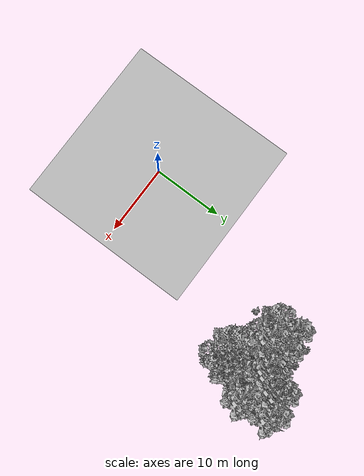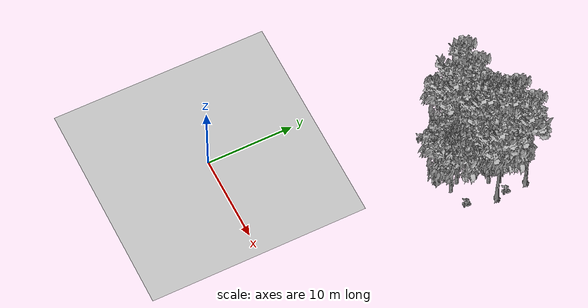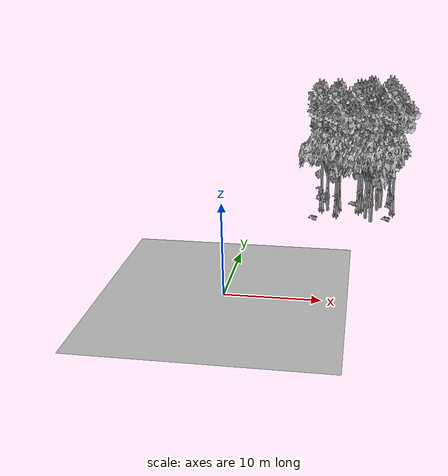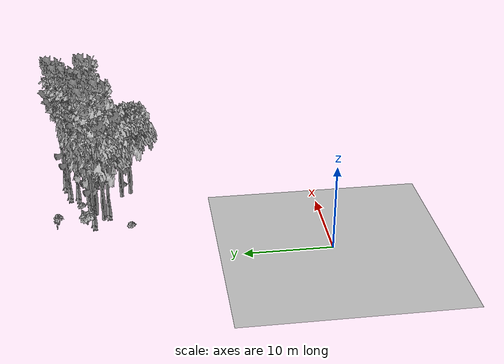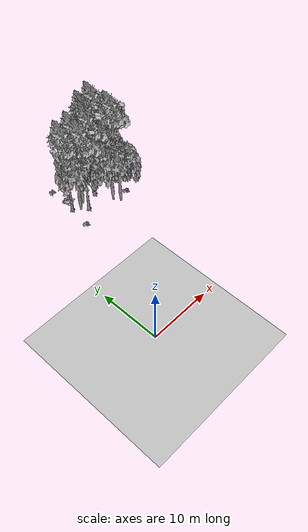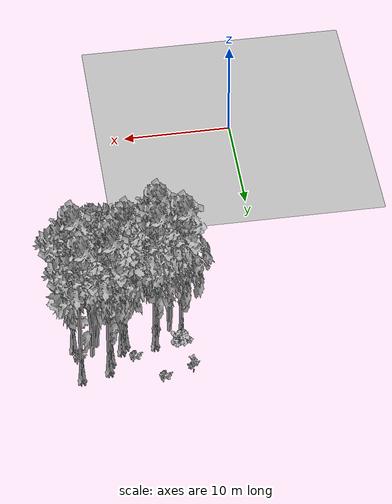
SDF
<sdf version="1.7">
 <world name="default">
  <model name="ground_plane">
   <static>1</static>
   <link name="link">
    <collision name="collision">
     <pose>-50 0 0 0 -0 0</pose>
     <geometry><plane><normal>0 0 1</normal><size>80 80</size></plane></geometry>
     <surface><contact><ode><min_depth>0.01</min_depth><max_vel>0</max_vel></ode></contact></surface>
    </collision>
    <visual name="grass">
     <cast_shadows>0</cast_shadows>
     <geometry>
      <mesh>
       <scale>0.46714285714285714 0.46714285714285714 0.1</scale>
       <uri>file://grass_plane/meshes/grass_plane.dae</uri>
      </mesh>
     </geometry>
    </visual>
   </link>
  </model>
  <model name="Tree 21">
   <static>1</static>
   <pose>16.07610414647575 26.971993970399083 0 1.57079 -0 0</pose>
   <link name="link">
    <collision name="collision">
     <geometry><mesh><scale>3.5 5 3.5</scale><uri>model://tree_2/meshes/tree_2.obj</uri></mesh></geometry>
    </collision>
    <visual name="visual">
     <geometry><mesh><scale>3.5 5 3.5</scale><uri>model://tree_2/meshes/tree_2.obj</uri></mesh></geometry>
    </visual>
   </link>
  </model>
  <model name="Tree 133">
   <static>1</static>
   <pose>14.90276783453973 28.925928803310953 0 1.57079 -0 0</pose>
   <link name="link">
    <collision name="collision">
     <geometry><mesh><scale>3.5 5 3.5</scale><uri>model://tree_9/meshes/tree_9.obj</uri></mesh></geometry>
    </collision>
    <visual name="visual">
     <geometry><mesh><scale>3.5 5 3.5</scale><uri>model://tree_9/meshes/tree_9.obj</uri></mesh></geometry>
    </visual>
   </link>
  </model>
  <model name="Tree 153">
   <static>1</static>
   <pose>13.157764442692532 26.101710760386993 0 1.57079 -0 0</pose>
   <link name="link">
    <collision name="collision">
     <geometry><mesh><scale>3.5 5 3.5</scale><uri>model://tree_9/meshes/tree_9.obj</uri></mesh></geometry>
    </collision>
    <visual name="visual">
     <geometry><mesh><scale>3.5 5 3.5</scale><uri>model://tree_9/meshes/tree_9.obj</uri></mesh></geometry>
    </visual>
   </link>
  </model>
  <model name="Tree 172">
   <static>1</static>
   <pose>10.590173555790976 26.48944410050548 0 1.57079 -0 0</pose>
   <link name="link">
    <collision name="collision">
     <geometry><mesh><scale>3.5 5 3.5</scale><uri>model://tree_9/meshes/tree_9.obj</uri></mesh></geometry>
    </collision>
    <visual name="visual">
     <geometry><mesh><scale>3.5 5 3.5</scale><uri>model://tree_9/meshes/tree_9.obj</uri></mesh></geometry>
    </visual>
   </link>
  </model>
  <model name="Tree 278">
   <static>1</static>
   <pose>9.046517128849906 24.946124900122086 0 1.57079 -0 0</pose>
   <link name="link">
    <collision name="collision">
     <geometry><mesh><scale>3.5 5 3.5</scale><uri>model://tree_2/meshes/tree_2.obj</uri></mesh></geometry>
    </collision>
    <visual name="visual">
     <geometry><mesh><scale>3.5 5 3.5</scale><uri>model://tree_2/meshes/tree_2.obj</uri></mesh></geometry>
    </visual>
   </link>
  </model>
  <model name="Tree 309">
   <static>1</static>
   <pose>10.251914757147631 24.37790803341278 0 1.57079 -0 0</pose>
   <link name="link">
    <collision name="collision">
     <geometry><mesh><scale>3.5 5 3.5</scale><uri>model://tree_9/meshes/tree_9.obj</uri></mesh></geometry>
    </collision>
    <visual name="visual">
     <geometry><mesh><scale>3.5 5 3.5</scale><uri>model://tree_9/meshes/tree_9.obj</uri></mesh></geometry>
    </visual>
   </link>
  </model>
  <model name="Tree 321">
   <static>1</static>
   <pose>17.35530280379308 29.541019432502864 0 1.57079 -0 0</pose>
   <link name="link">
    <collision name="collision">
     <geometry><mesh><scale>3.5 5 3.5</scale><uri>model://tree_9/meshes/tree_9.obj</uri></mesh></geometry>
    </collision>
    <visual name="visual">
     <geometry><mesh><scale>3.5 5 3.5</scale><uri>model://tree_9/meshes/tree_9.obj</uri></mesh></geometry>
    </visual>
   </link>
  </model>
  <model name="Tree 370">
   <static>1</static>
   <pose>14.107179173221049 22.803696115856297 0 1.57079 -0 0</pose>
   <link name="link">
    <collision name="collision">
     <geometry><mesh><scale>3.5 5 3.5</scale><uri>model://tree_2/meshes/tree_2.obj</uri></mesh></geometry>
    </collision>
    <visual name="visual">
     <geometry><mesh><scale>3.5 5 3.5</scale><uri>model://tree_2/meshes/tree_2.obj</uri></mesh></geometry>
    </visual>
   </link>
  </model>
  <model name="Tree 402">
   <static>1</static>
   <pose>15.572221709795592 25.91505462755167 0 1.57079 -0 0</pose>
   <link name="link">
    <collision name="collision">
     <geometry><mesh><scale>3.5 5 3.5</scale><uri>model://tree_2/meshes/tree_2.obj</uri></mesh></geometry>
    </collision>
    <visual name="visual">
     <geometry><mesh><scale>3.5 5 3.5</scale><uri>model://tree_2/meshes/tree_2.obj</uri></mesh></geometry>
    </visual>
   </link>
  </model>
  <model name="Tree 468">
   <static>1</static>
   <pose>13.570456629721633 26.691291105306064 0 1.57079 -0 0</pose>
   <link name="link">
    <collision name="collision">
     <geometry><mesh><scale>3.5 5 3.5</scale><uri>model://tree_9/meshes/tree_9.obj</uri></mesh></geometry>
    </collision>
    <visual name="visual">
     <geometry><mesh><scale>3.5 5 3.5</scale><uri>model://tree_9/meshes/tree_9.obj</uri></mesh></geometry>
    </visual>
   </link>
  </model>
  <model name="Tree 479">
   <static>1</static>
   <pose>14.779627809916633 21.74538699977017 0 1.57079 -0 0</pose>
   <link name="link">
    <collision name="collision">
     <geometry><mesh><scale>3.5 5 3.5</scale><uri>model://tree_2/meshes/tree_2.obj</uri></mesh></geometry>
    </collision>
    <visual name="visual">
     <geometry><mesh><scale>3.5 5 3.5</scale><uri>model://tree_2/meshes/tree_2.obj</uri></mesh></geometry>
    </visual>
   </link>
  </model>
  <model name="Tree 507">
   <static>1</static>
   <pose>17.70285635516192 25.850011138806494 0 1.57079 -0 0</pose>
   <link name="link">
    <collision name="collision">
     <geometry><mesh><scale>3.5 5 3.5</scale><uri>model://tree_9/meshes/tree_9.obj</uri></mesh></geometry>
    </collision>
    <visual name="visual">
     <geometry><mesh><scale>3.5 5 3.5</scale><uri>model://tree_9/meshes/tree_9.obj</uri></mesh></geometry>
    </visual>
   </link>
  </model>
  <model name="Tree 551">
   <static>1</static>
   <pose>8.24462107541153 26.067921147948482 0 1.57079 -0 0</pose>
   <link name="link">
    <collision name="collision">
     <geometry><mesh><scale>3.5 5 3.5</scale><uri>model://tree_9/meshes/tree_9.obj</uri></mesh></geometry>
    </collision>
    <visual name="visual">
     <geometry><mesh><scale>3.5 5 3.5</scale><uri>model://tree_9/meshes/tree_9.obj</uri></mesh></geometry>
    </visual>
   </link>
  </model>
  <model name="Tree 624">
   <static>1</static>
   <pose>10.291728530153883 25.82426574903822 0 1.57079 -0 0</pose>
   <link name="link">
    <collision name="collision">
     <geometry><mesh><scale>3.5 5 3.5</scale><uri>model://tree_2/meshes/tree_2.obj</uri></mesh></geometry>
    </collision>
    <visual name="visual">
     <geometry><mesh><scale>3.5 5 3.5</scale><uri>model://tree_2/meshes/tree_2.obj</uri></mesh></geometry>
    </visual>
   </link>
  </model>
  <model name="Tree 638">
   <static>1</static>
   <pose>14.620289101577342 27.96062793889776 0 1.57079 -0 0</pose>
   <link name="link">
    <collision name="collision">
     <geometry><mesh><scale>3.5 5 3.5</scale><uri>model://tree_9/meshes/tree_9.obj</uri></mesh></geometry>
    </collision>
    <visual name="visual">
     <geometry><mesh><scale>3.5 5 3.5</scale><uri>model://tree_9/meshes/tree_9.obj</uri></mesh></geometry>
    </visual>
   </link>
  </model>
  <model name="Bush 18">
   <static>1</static>
   <pose>8.308098739599323 26.826876187194614 0 1.57079 -0 0</pose>
   <link name="link">
    <collision name="collision">
     <geometry><mesh><scale>2 2 2</scale><uri>model://bush_1/meshes/bush_1.obj</uri></mesh></geometry>
     <surface><contact><collide_without_contact>false</collide_without_contact></contact></surface>
    </collision>
    <visual name="visual">
     <geometry><mesh><scale>2 2 2</scale><uri>model://bush_1/meshes/bush_1.obj</uri></mesh></geometry>
    </visual>
   </link>
  </model>
  <model name="Bush 83">
   <static>1</static>
   <pose>12.45094564091496 27.55560717788019 0 1.57079 -0 0</pose>
   <link name="link">
    <collision name="collision">
     <geometry><mesh><scale>2 2 2</scale><uri>model://bush_2/meshes/bush_2.obj</uri></mesh></geometry>
     <surface><contact><collide_without_contact>false</collide_without_contact></contact></surface>
    </collision>
    <visual name="visual">
     <geometry><mesh><scale>2 2 2</scale><uri>model://bush_2/meshes/bush_2.obj</uri></mesh></geometry>
    </visual>
   </link>
  </model>
  <model name="Bush 132">
   <static>1</static>
   <pose>17.302511402449902 27.118192878064193 0 1.57079 -0 0</pose>
   <link name="link">
    <collision name="collision">
     <geometry><mesh><scale>2 2 2</scale><uri>model://bush_2/meshes/bush_2.obj</uri></mesh></geometry>
     <surface><contact><collide_without_contact>false</collide_without_contact></contact></surface>
    </collision>
    <visual name="visual">
     <geometry><mesh><scale>2 2 2</scale><uri>model://bush_2/meshes/bush_2.obj</uri></mesh></geometry>
    </visual>
   </link>
  </model>
  <model name="Bush 133">
   <static>1</static>
   <pose>7.773831231264715 30.249097909187796 0 1.57079 -0 0</pose>
   <link name="link">
    <collision name="collision">
     <geometry><mesh><scale>2 2 2</scale><uri>model://bush_5/meshes/bush_5.obj</uri></mesh></geometry>
     <surface><contact><collide_without_contact>false</collide_without_contact></contact></surface>
    </collision>
    <visual name="visual">
     <geometry><mesh><scale>2 2 2</scale><uri>model://bush_5/meshes/bush_5.obj</uri></mesh></geometry>
    </visual>
   </link>
  </model>
  <model name="Bush 148">
   <static>1</static>
   <pose>8.832275852686863 27.019758352117663 0 1.57079 -0 0</pose>
   <link name="link">
    <collision name="collision">
     <geometry><mesh><scale>2 2 2</scale><uri>model://bush_0/meshes/bush_0.obj</uri></mesh></geometry>
     <surface><contact><collide_without_contact>false</collide_without_contact></contact></surface>
    </collision>
    <visual name="visual">
     <geometry><mesh><scale>2 2 2</scale><uri>model://bush_0/meshes/bush_0.obj</uri></mesh></geometry>
    </visual>
   </link>
  </model>
  <model name="Bush 453">
   <static>1</static>
   <pose>10.181032536261256 30.255743131704506 0 1.57079 -0 0</pose>
   <link name="link">
    <collision name="collision">
     <geometry><mesh><scale>2 2 2</scale><uri>model://bush_2/meshes/bush_2.obj</uri></mesh></geometry>
     <surface><contact><collide_without_contact>false</collide_without_contact></contact></surface>
    </collision>
    <visual name="visual">
     <geometry><mesh><scale>2 2 2</scale><uri>model://bush_2/meshes/bush_2.obj</uri></mesh></geometry>
    </visual>
   </link>
  </model>
  <model name="Bush 545">
   <static>1</static>
   <pose>7.42613136815104 21.88349795744454 0 1.57079 -0 0</pose>
   <link name="link">
    <collision name="collision">
     <geometry><mesh><scale>2 2 2</scale><uri>model://bush_2/meshes/bush_2.obj</uri></mesh></geometry>
     <surface><contact><collide_without_contact>false</collide_without_contact></contact></surface>
    </collision>
    <visual name="visual">
     <geometry><mesh><scale>2 2 2</scale><uri>model://bush_2/meshes/bush_2.obj</uri></mesh></geometry>
    </visual>
   </link>
  </model>
  <model name="Bush 612">
   <static>1</static>
   <pose>16.83419250614721 22.580874006727527 0 1.57079 -0 0</pose>
   <link name="link">
    <collision name="collision">
     <geometry><mesh><scale>2 2 2</scale><uri>model://bush_2/meshes/bush_2.obj</uri></mesh></geometry>
     <surface><contact><collide_without_contact>false</collide_without_contact></contact></surface>
    </collision>
    <visual name="visual">
     <geometry><mesh><scale>2 2 2</scale><uri>model://bush_2/meshes/bush_2.obj</uri></mesh></geometry>
    </visual>
   </link>
  </model>
 </world>
</sdf>
